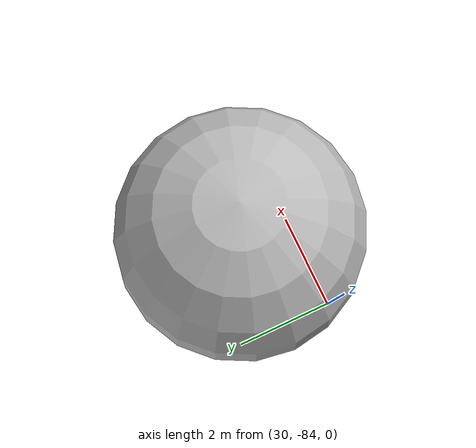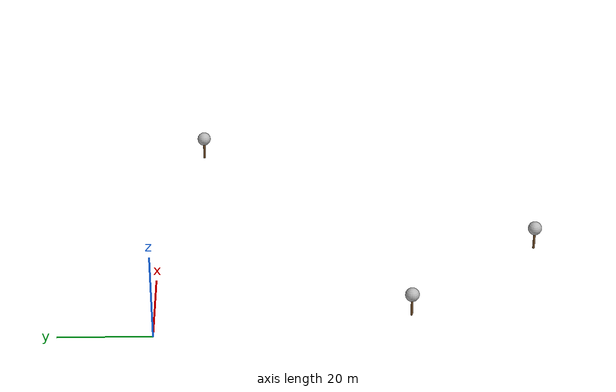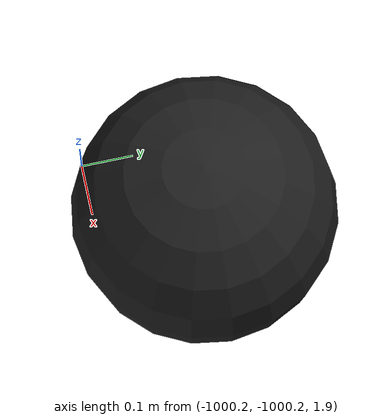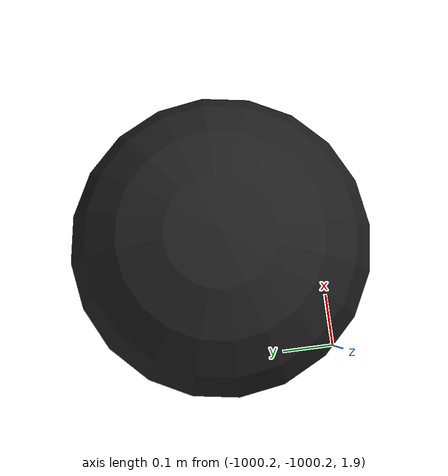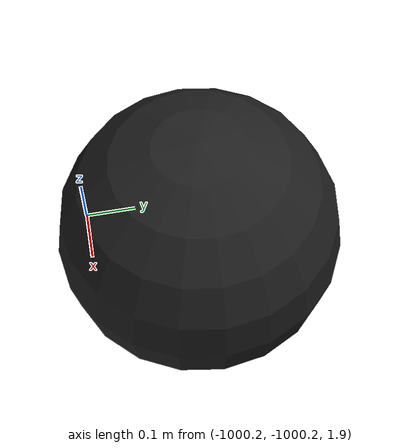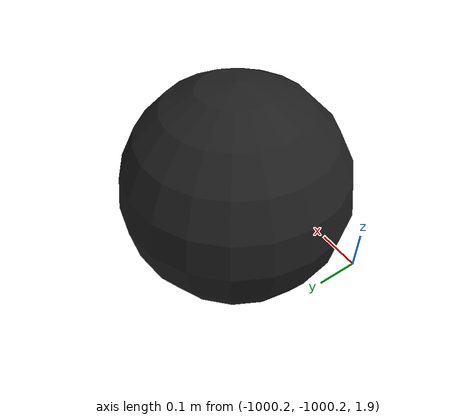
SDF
<sdf version="1.5">
 <world name="default">
  <plugin name="mrs_gazebo_static_transform_republisher_plugin" filename="libMRSGazeboStaticTransformRepublisher.so"/>
  <spherical_coordinates>
   <surface_model>EARTH_WGS84</surface_model>
   <latitude_deg>47.397743</latitude_deg>
   <longitude_deg>8.545594</longitude_deg>
   <elevation>0.0</elevation>
   <heading_deg>0</heading_deg>
  </spherical_coordinates>
  <physics name="default_physics" default="0" type="ode">
   <gravity>0 0 -9.8066</gravity>
   <ode>
    <solver>
     <type>quick</type>
     <iters>10</iters>
     <sor>1.3</sor>
     <use_dynamic_moi_rescaling>0</use_dynamic_moi_rescaling>
    </solver>
    <constraints>
     <cfm>0</cfm>
     <erp>0.2</erp>
     <contact_max_correcting_vel>1000</contact_max_correcting_vel>
     <contact_surface_layer>0.001</contact_surface_layer>
    </constraints>
   </ode>
   <max_step_size>0.004</max_step_size>
   <real_time_factor>1</real_time_factor>
   <real_time_update_rate>250</real_time_update_rate>
   <magnetic_field>6.0e-06 2.3e-05 -4.2e-05</magnetic_field>
  </physics>
  <scene><shadows>false</shadows></scene>
  <light name="sun" type="directional">
   <pose>0 0 1000 0.4 0.2 0</pose>
   <diffuse>1 1 1 1</diffuse>
   <specular>0.6 0.6 0.6 1</specular>
   <direction>0.1 0.1 -0.9</direction>
   <attenuation>
    <range>20</range>
    <constant>0.5</constant>
    <linear>0.01</linear>
    <quadratic>0.001</quadratic>
   </attenuation>
  </light>
  <model name="the_void">
   <static>1</static>
   <link name="link">
    <pose>0 0 0.1 0 -0 0</pose>
    <visual name="the_void">
     <pose>0 0 2 0 -0 0</pose>
     <geometry><sphere><radius>0.25</radius></sphere></geometry>
     <material>
      <script><uri>file://media/materials/scripts/Gazebo.material</uri><name>Gazebo/Black</name></script>
     </material>
    </visual>
   </link>
   <pose>-1000 -1000 0 0 0 0</pose>
  </model>
  <model name="MRS_tree_simples_fire0">
   <include>
    <pose>6.707547083749102 -54.06216474702539 0 0 0 0</pose>
    <uri>model://MRS_tree_simples_fire</uri>
   </include>
  </model>
  <model name="MRS_tree_simples_close0">
   <include>
    <pose>31.102551189188524 -82.49755782259557 0 0 0 0</pose>
    <uri>model://MRS_tree_simples_close</uri>
   </include>
  </model>
  <model name="MRS_tree_simple0">
   <include><pose>69.8962228127609 -9.233735455192175 0 0 0 0</pose><uri>model://MRS_tree_simple</uri></include>
  </model>
  <model name="SARckc_floor">
   <include><pose>0 0 100 0 0 2.35619</pose><uri>model://SARckc_floor</uri></include>
  </model>
  <plugin name="mrs_gazebo_rviz_cam_synchronizer" filename="libMRSGazeboRvizCameraSynchronizer.so">
   <target_frame_id>gazebo_user_camera</target_frame_id>
   <world_origin_frame_id>uav1/gps_origin</world_origin_frame_id>
   <frame_to_follow>uav1</frame_to_follow>
  </plugin>
 </world>
</sdf>

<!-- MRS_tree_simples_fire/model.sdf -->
<sdf version="1.5">
  <model name="MRS_tree_simples_fire">
	  <static>1</static>
	<link name="link">
      <pose>0 0 0.1 0 0 0</pose>
      <inertial>
        <mass>666</mass>
        <inertia>
          <ixx>0.08611666666666669</ixx>
          <ixy>0</ixy>
          <ixz>0</ixz>
          <iyy>0.08611666666666669</iyy>
          <iyz>0</iyz>
          <izz>0.08611666666666669</izz>
        </inertia>
      </inertial>

      <collision name="collision_trunk">
        <pose>0 0 2.0 0 0 0</pose>
        <geometry>
          <cylinder>
            <radius>0.25</radius>
            <length>4</length>
          </cylinder>
        </geometry>
        <surface>
          <contact>
            <poissons_ratio>0.347</poissons_ratio>
            <elastic_modulus>8.8e+09</elastic_modulus>
            <ode>
              <kp>100000</kp>
              <kd>100</kd>
              <max_vel>100.0</max_vel>
              <min_depth>0.001</min_depth>
            </ode>
          </contact>
          <friction>
            <torsional>
              <coefficient>1.0</coefficient>
              <use_patch_radius>0</use_patch_radius>
              <surface_radius>0.01</surface_radius>
            </torsional>
          </friction>
        </surface>
      </collision>

      <collision name="collision_treetop">
        <pose>0 0 5.2 0 0 0</pose>
        <geometry>
          <sphere>
            <radius>1.5</radius>
          </sphere>
        </geometry>
        <surface>
          <contact>
            <poissons_ratio>0.347</poissons_ratio>
            <elastic_modulus>8.8e+09</elastic_modulus>
            <ode>
              <kp>100000</kp>
              <kd>100</kd>
              <max_vel>100.0</max_vel>
              <min_depth>0.001</min_depth>
            </ode>
          </contact>
          <friction>
            <torsional>
              <coefficient>1.0</coefficient>
              <use_patch_radius>0</use_patch_radius>
              <surface_radius>0.01</surface_radius>
            </torsional>
          </friction>
        </surface>
      </collision>

      <visual name="trunk">
        <pose>0 0 2.0 0 0 0</pose>
        <geometry>
          <cylinder>
            <radius>0.25</radius>
            <length>4</length>
          </cylinder>
        </geometry>
        <material>
          <script>
            <uri>model://MRS_tree_simples_fire/scripts</uri>
            <uri>model://MRS_tree_simples_fire/materials/textures</uri>
            <name>MRS_tree_simples_fire/Trunk</name>
          </script>
        </material>
      </visual>

      <visual name="treetop">
        <pose>0 0 5.2 0 0 0</pose>
        <geometry>
          <sphere>
            <radius>1.5</radius>
          </sphere>
        </geometry>
        <material>
          <script>
            <uri>model://MRS_tree_simples_fire/scripts</uri>
            <uri>model://MRS_tree_simples_fire/materials/textures</uri>
            <name>MRS_tree_simples_fire/Treetop</name>
          </script>
        </material>
      </visual>

    </link>
  </model>
</sdf>

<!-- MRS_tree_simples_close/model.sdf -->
<sdf version="1.5">
  <model name="MRS_tree_simples_close">
	  <static>1</static>
	<link name="link">
      <pose>0 0 0.1 0 0 0</pose>
      <inertial>
        <mass>666</mass>
        <inertia>
          <ixx>0.08611666666666669</ixx>
          <ixy>0</ixy>
          <ixz>0</ixz>
          <iyy>0.08611666666666669</iyy>
          <iyz>0</iyz>
          <izz>0.08611666666666669</izz>
        </inertia>
      </inertial>

      <collision name="collision_trunk">
        <pose>0 0 2.0 0 0 0</pose>
        <geometry>
          <cylinder>
            <radius>0.25</radius>
            <length>4</length>
          </cylinder>
        </geometry>
        <surface>
          <contact>
            <poissons_ratio>0.347</poissons_ratio>
            <elastic_modulus>8.8e+09</elastic_modulus>
            <ode>
              <kp>100000</kp>
              <kd>100</kd>
              <max_vel>100.0</max_vel>
              <min_depth>0.001</min_depth>
            </ode>
          </contact>
          <friction>
            <torsional>
              <coefficient>1.0</coefficient>
              <use_patch_radius>0</use_patch_radius>
              <surface_radius>0.01</surface_radius>
            </torsional>
          </friction>
        </surface>
      </collision>

      <collision name="collision_treetop">
        <pose>0 0 5.2 0 0 0</pose>
        <geometry>
          <sphere>
            <radius>1.5</radius>
          </sphere>
        </geometry>
        <surface>
          <contact>
            <poissons_ratio>0.347</poissons_ratio>
            <elastic_modulus>8.8e+09</elastic_modulus>
            <ode>
              <kp>100000</kp>
              <kd>100</kd>
              <max_vel>100.0</max_vel>
              <min_depth>0.001</min_depth>
            </ode>
          </contact>
          <friction>
            <torsional>
              <coefficient>1.0</coefficient>
              <use_patch_radius>0</use_patch_radius>
              <surface_radius>0.01</surface_radius>
            </torsional>
          </friction>
        </surface>
      </collision>

      <visual name="trunk">
        <pose>0 0 2.0 0 0 0</pose>
        <geometry>
          <cylinder>
            <radius>0.25</radius>
            <length>4</length>
          </cylinder>
        </geometry>
        <material>
          <script>
            <uri>model://MRS_tree_simples_close/scripts</uri>
            <uri>model://MRS_tree_simples_close/materials/textures</uri>
            <name>MRS_tree_simples_close/Trunk</name>
          </script>
        </material>
      </visual>

      <visual name="treetop">
        <pose>0 0 5.2 0 0 0</pose>
        <geometry>
          <sphere>
            <radius>1.5</radius>
          </sphere>
        </geometry>
        <material>
          <script>
            <uri>model://MRS_tree_simples_close/scripts</uri>
            <uri>model://MRS_tree_simples_close/materials/textures</uri>
            <name>MRS_tree_simples_close/Treetop</name>
          </script>
        </material>
      </visual>

    </link>
  </model>
</sdf>

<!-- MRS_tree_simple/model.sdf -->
<sdf version="1.5">
  <model name="MRS_tree_simple">
	  <static>1</static>
	<link name="link">
      <pose>0 0 0.1 0 0 0</pose>
      <inertial>
        <mass>666</mass>
        <inertia>
          <ixx>0.08611666666666669</ixx>
          <ixy>0</ixy>
          <ixz>0</ixz>
          <iyy>0.08611666666666669</iyy>
          <iyz>0</iyz>
          <izz>0.08611666666666669</izz>
        </inertia>
      </inertial>

      <collision name="collision_trunk">
        <pose>0 0 2.0 0 0 0</pose>
        <geometry>
          <cylinder>
            <radius>0.25</radius>
            <length>4</length>
          </cylinder>
        </geometry>
        <surface>
          <contact>
            <poissons_ratio>0.347</poissons_ratio>
            <elastic_modulus>8.8e+09</elastic_modulus>
            <ode>
              <kp>100000</kp>
              <kd>100</kd>
              <max_vel>100.0</max_vel>
              <min_depth>0.001</min_depth>
            </ode>
          </contact>
          <friction>
            <torsional>
              <coefficient>1.0</coefficient>
              <use_patch_radius>0</use_patch_radius>
              <surface_radius>0.01</surface_radius>
            </torsional>
          </friction>
        </surface>
      </collision>

      <collision name="collision_treetop">
        <pose>0 0 5.2 0 0 0</pose>
        <geometry>
          <sphere>
            <radius>1.5</radius>
          </sphere>
        </geometry>
        <surface>
          <contact>
            <poissons_ratio>0.347</poissons_ratio>
            <elastic_modulus>8.8e+09</elastic_modulus>
            <ode>
              <kp>100000</kp>
              <kd>100</kd>
              <max_vel>100.0</max_vel>
              <min_depth>0.001</min_depth>
            </ode>
          </contact>
          <friction>
            <torsional>
              <coefficient>1.0</coefficient>
              <use_patch_radius>0</use_patch_radius>
              <surface_radius>0.01</surface_radius>
            </torsional>
          </friction>
        </surface>
      </collision>

      <visual name="trunk">
        <pose>0 0 2.0 0 0 0</pose>
        <geometry>
          <cylinder>
            <radius>0.25</radius>
            <length>4</length>
          </cylinder>
        </geometry>
        <material>
          <script>
            <uri>model://MRS_tree_simple/scripts</uri>
            <uri>model://MRS_tree_simple/materials/textures</uri>
            <name>MRS_tree_simple/Trunk</name>
          </script>
        </material>
      </visual>

      <visual name="treetop">
        <pose>0 0 5.2 0 0 0</pose>
        <geometry>
          <sphere>
            <radius>1.5</radius>
          </sphere>
        </geometry>
        <material>
          <script>
            <uri>model://MRS_tree_simple/scripts</uri>
            <uri>model://MRS_tree_simple/materials/textures</uri>
            <name>MRS_tree_simple/Treetop</name>
          </script>
        </material>
      </visual>

    </link>
  </model>
</sdf>

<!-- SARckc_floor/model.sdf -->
<sdf version='1.7'>
  <model name='SARckc_floor'>
    <link name='link_1'>
      <inertial>
        <pose>0 0 0 0 0 0</pose>
        <mass>10</mass>
        <inertia>
          <ixx>1</ixx>
          <ixy>1</ixy>
          <ixz>1</ixz>
          <iyy>1</iyy>
          <iyz>1</iyz>
          <izz>1</izz>
        </inertia>
      </inertial>
      <self_collide>0</self_collide>
      <enable_wind>0</enable_wind>
      <kinematic>0</kinematic>
      <pose>0 0 0 0 -0 0</pose>
      <gravity>1</gravity>
      <collision name="collision_uav">
        <pose>0 -1.34855 -1.71555 -0.06382599261 0 0</pose>
        <geometry>
          <box>
            <size> 2.8 5.5 0.5</size>
          </box>
        </geometry>
      </collision>
    </link>
    <static>1</static>
    <allow_auto_disable>1</allow_auto_disable>
  </model>
</sdf>
